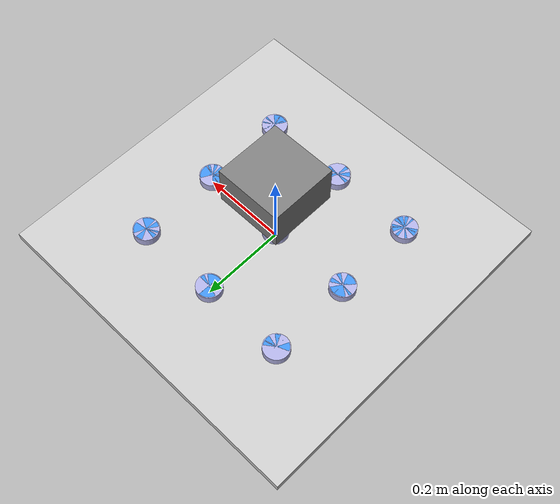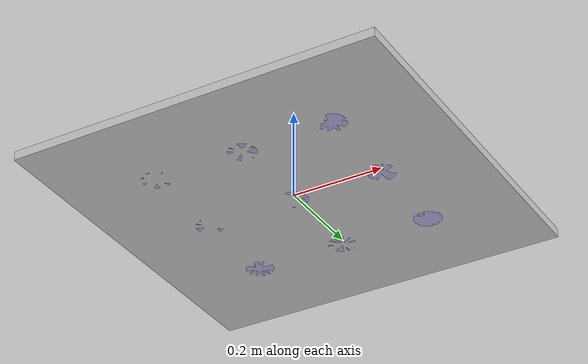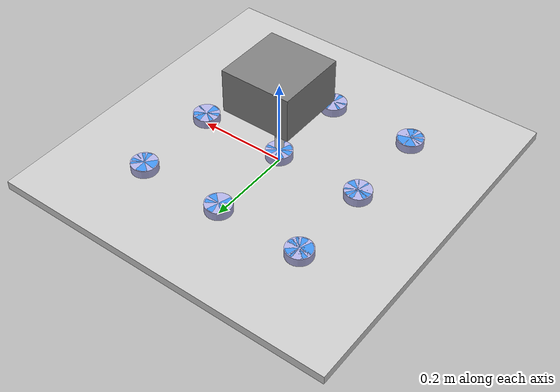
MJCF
<?xml version="1.0" encoding="utf-8"?>
<mujoco model="pipette_system">
    <compiler angle="radian" coordinate="local" meshdir="../meshes" texturedir="../textures"/>
    <option timestep="0.002" iterations="50" solver="Newton" tolerance="1e-10"/>

    <asset>
        <material name="well_material" rgba="0.7 0.7 0.9 1"/>
        <material name="pipette_material" rgba="0.9 0.9 0.9 1"/>
        <material name="liquid_material" rgba="0.2 0.6 1.0 0.8"/>
        <material name="machine_material" rgba="0.5 0.5 0.5 1"/>
        <material name="surface_material" rgba="0.8 0.8 0.8 1"/>
    </asset>

    <worldbody>
        <!-- Lighting and camera -->
        <light directional="true" diffuse=".8 .8 .8" specular=".2 .2 .2" pos="0 0 5" dir="0 0 -1"/>
        <camera name="top_view" pos="0 0 1.5" xyaxes="1 0 0 0 1 0"/>
        <camera name="side_view" pos="1.0 0 0.5" xyaxes="0 1 0 0 0 1"/>

        <!-- Surface with wells -->
        <body name="surface" pos="0 0 0">
            <geom type="box" size="0.4 0.4 0.01" rgba="0.8 0.8 0.8 1" material="surface_material"/>

            <!-- Wells arranged in a grid -->
            <body name="well_1" pos="-0.2 -0.2 0.01">
                <geom name="well_1_geom" type="cylinder" size="0.03 0.02" material="well_material"/>
                <site name="well_1_site" pos="0 0 0" size="0.005"/>
                <!-- Liquid in the well -->
                <geom name="liquid_1" type="cylinder" size="0.028 0.01" pos="0 0 0.01" material="liquid_material"/>
            </body>

            <body name="well_2" pos="0 -0.2 0.01">
                <geom name="well_2_geom" type="cylinder" size="0.03 0.02" material="well_material"/>
                <site name="well_2_site" pos="0 0 0" size="0.005"/>
                <geom name="liquid_2" type="cylinder" size="0.028 0.01" pos="0 0 0.01" material="liquid_material"/>
            </body>

            <body name="well_3" pos="0.2 -0.2 0.01">
                <geom name="well_3_geom" type="cylinder" size="0.03 0.02" material="well_material"/>
                <site name="well_3_site" pos="0 0 0" size="0.005"/>
                <geom name="liquid_3" type="cylinder" size="0.028 0.01" pos="0 0 0.01" material="liquid_material"/>
            </body>

            <body name="well_4" pos="-0.2 0 0.01">
                <geom name="well_4_geom" type="cylinder" size="0.03 0.02" material="well_material"/>
                <site name="well_4_site" pos="0 0 0" size="0.005"/>
                <geom name="liquid_4" type="cylinder" size="0.028 0.01" pos="0 0 0.01" material="liquid_material"/>
            </body>

            <body name="well_5" pos="0 0 0.01">
                <geom name="well_5_geom" type="cylinder" size="0.03 0.02" material="well_material"/>
                <site name="well_5_site" pos="0 0 0" size="0.005"/>
                <geom name="liquid_5" type="cylinder" size="0.028 0.01" pos="0 0 0.01" material="liquid_material"/>
            </body>

            <body name="well_6" pos="0.2 0 0.01">
                <geom name="well_6_geom" type="cylinder" size="0.03 0.02" material="well_material"/>
                <site name="well_6_site" pos="0 0 0" size="0.005"/>
                <geom name="liquid_6" type="cylinder" size="0.028 0.01" pos="0 0 0.01" material="liquid_material"/>
            </body>

            <body name="well_7" pos="-0.2 0.2 0.01">
                <geom name="well_7_geom" type="cylinder" size="0.03 0.02" material="well_material"/>
                <site name="well_7_site" pos="0 0 0" size="0.005"/>
                <geom name="liquid_7" type="cylinder" size="0.028 0.01" pos="0 0 0.01" material="liquid_material"/>
            </body>

            <body name="well_8" pos="0 0.2 0.01">
                <geom name="well_8_geom" type="cylinder" size="0.03 0.02" material="well_material"/>
                <site name="well_8_site" pos="0 0 0" size="0.005"/>
                <geom name="liquid_8" type="cylinder" size="0.028 0.01" pos="0 0 0.01" material="liquid_material"/>
            </body>

            <body name="well_9" pos="0.2 0.2 0.01">
                <geom name="well_9_geom" type="cylinder" size="0.03 0.02" material="well_material"/>
                <site name="well_9_site" pos="0 0 0" size="0.005"/>
                <geom name="liquid_9" type="cylinder" size="0.028 0.01" pos="0 0 0.01" material="liquid_material"/>
            </body>
        </body>

        <!-- Machine with pipette -->
        <body name="machine" pos="0 0 0.2">
            <!-- XY movement joints -->
            <joint name="machine_x" type="slide" axis="1 0 0" range="-0.4 0.4" damping="10"/>
            <joint name="machine_y" type="slide" axis="0 1 0" range="-0.4 0.4" damping="10"/>

            <!-- Machine body (cube) -->
            <geom name="machine_body" type="box" size="0.08 0.08 0.05" material="machine_material"/>

            <!-- Z movement joint for the machine -->
            <body name="z_slider" pos="0 0 -0.05">
                <joint name="machine_z" type="slide" axis="0 0 1" range="-0.15 0.05" damping="10"/>

                <!-- Pipette -->
                <body name="pipette" pos="0 0 0">
                    <geom name="pipette_body" type="cylinder" size="0.01 0.05" pos="0 0 -0.03" material="pipette_material"/>
                    <geom name="pipette_tip" type="cylinder" size="0.01 0.03" pos="0 0 -0.08" material="pipette_material"/> <!-- should be cone-->

                    <!-- Plunger mechanism -->
                    <body name="plunger" pos="0 0 0.03">
                        <joint name="plunger_joint" type="slide" axis="0 0 1" range="0 0.04" damping="5"/>
                        <geom name="plunger_top" type="cylinder" size="0.015 0.01" pos="0 0 0" material="machine_material"/>
                        <geom name="plunger_rod" type="cylinder" size="0.005 0.04" pos="0 0 -0.02" material="pipette_material"/>

                        <!-- Site for detecting if liquid is being held -->
                        <site name="liquid_detector" pos="0 0 -0.08" size="0.001"/>

                        <!-- Liquid in pipette (initially invisible) -->
                        <geom name="pipette_liquid" type="cylinder" size="0.006 0.02" pos="0 0 -0.09" material="liquid_material" rgba="0.2 0.6 1.0 0"/>
                    </body>
                </body>
            </body>
        </body>
    </worldbody>

    <actuator>
        <!-- XY position control for the machine -->
        <motor name="x_control" joint="machine_x" ctrlrange="-1 1" ctrllimited="true"/>
        <motor name="y_control" joint="machine_y" ctrlrange="-1 1" ctrllimited="true"/>

        <!-- Z position control for pipette height -->
        <motor name="z_control" joint="machine_z" ctrlrange="-1 1" ctrllimited="true"/>

        <!-- Plunger control -->
        <motor name="plunger_control" joint="plunger_joint" ctrlrange="0 1" ctrllimited="true" forcelimited="true" forcerange="0 2"/>
    </actuator>

    <sensor>
        <!-- Position sensors -->
        <jointpos name="x_pos" joint="machine_x"/>
        <jointpos name="y_pos" joint="machine_y"/>
        <jointpos name="z_pos" joint="machine_z"/>
        <jointpos name="plunger_pos" joint="plunger_joint"/>

        <!-- Force sensors -->
        <force name="plunger_force" site="liquid_detector"/>

        <!-- Site sensors for well positions -->
    </sensor>
</mujoco>
